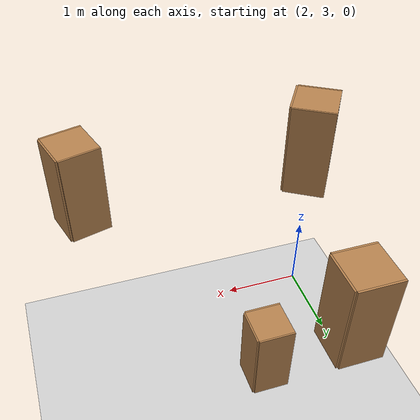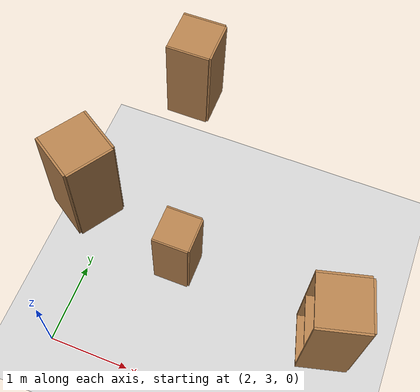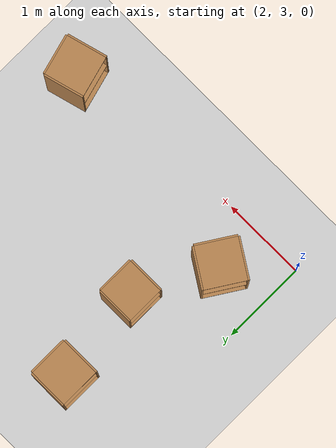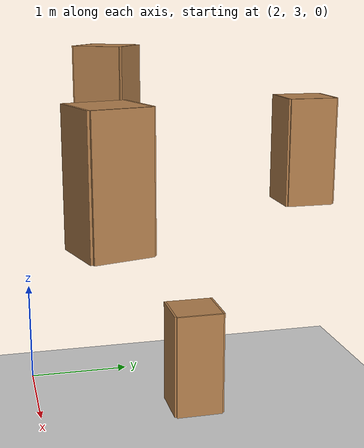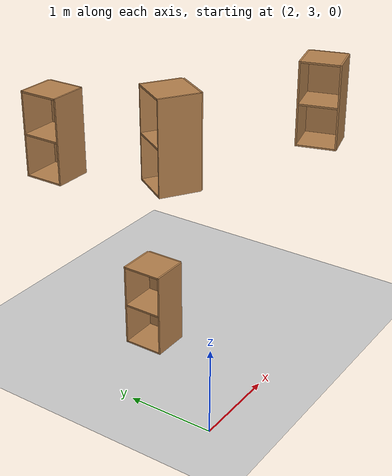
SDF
<sdf version="1.7">
 <world name="default">
  <model name="ground_plane">
   <static>1</static>
   <link name="link">
    <collision name="collision">
     <geometry><plane><normal>0 0 1</normal><size>100 100</size></plane></geometry>
     <surface>
      <contact><collide_bitmask>65535</collide_bitmask></contact>
      <friction><ode><mu>100</mu><mu2>50</mu2></ode></friction>
     </surface>
    </collision>
    <visual name="visual">
     <cast_shadows>0</cast_shadows>
     <geometry><plane><normal>0 0 1</normal><size>100 100</size></plane></geometry>
     <material>
      <script><uri>file://media/materials/scripts/gazebo.material</uri><name>Gazebo/Grey</name></script>
     </material>
    </visual>
   </link>
  </model>
  <model name="cabinet_1">
   <static>1</static>
   <link name="cabinet_bottom_plate">
    <inertial>
     <pose>0 0 -1 0 -0 0</pose>
     <inertia><ixx>2.05</ixx><ixy>0</ixy><ixz>0</ixz><iyy>2.05</iyy><iyz>0</iyz><izz>2.05</izz></inertia>
     <mass>25</mass>
    </inertial>
    <collision name="cabinet_bottom_plate_geom">
     <pose>0 0 0.01 0 -0 0</pose>
     <geometry><box><size>0.45 0.45 0.02</size></box></geometry>
    </collision>
    <visual name="cabinet_bottom_plate_geom_visual">
     <pose>0 0 0.01 0 -0 0</pose>
     <geometry><box><size>0.45 0.45 0.02</size></box></geometry>
     <material>
      <script><uri>file://media/materials/scripts/gazebo.material</uri><name>Gazebo/Wood</name></script>
     </material>
    </visual>
    <collision name="cabinet_bottom_plate_geom_cabinet_back_plate">
     <pose>0.235 0 0.51 0 -0 0</pose>
     <geometry><box><size>0.02 0.45 1.02</size></box></geometry>
    </collision>
    <visual name="cabinet_bottom_plate_geom_cabinet_back_plate_visual">
     <pose>0.235 0 0.51 0 -0 0</pose>
     <geometry><box><size>0.02 0.45 1.02</size></box></geometry>
     <material>
      <script><uri>file://media/materials/scripts/gazebo.material</uri><name>Gazebo/Wood</name></script>
     </material>
    </visual>
    <collision name="cabinet_bottom_plate_geom_cabinet_left_plate">
     <pose>0 0.235 0.51 0 -0 0</pose>
     <geometry><box><size>0.45 0.02 1.02</size></box></geometry>
    </collision>
    <visual name="cabinet_bottom_plate_geom_cabinet_left_plate_visual">
     <pose>0 0.235 0.51 0 -0 0</pose>
     <geometry><box><size>0.45 0.02 1.02</size></box></geometry>
     <material>
      <script><uri>file://media/materials/scripts/gazebo.material</uri><name>Gazebo/Wood</name></script>
     </material>
    </visual>
    <collision name="cabinet_bottom_plate_geom_cabinet_middle_plate">
     <pose>0 0 0.51 0 -0 0</pose>
     <geometry><box><size>0.45 0.45 0.02</size></box></geometry>
    </collision>
    <visual name="cabinet_bottom_plate_geom_cabinet_middle_plate_visual">
     <pose>0 0 0.51 0 -0 0</pose>
     <geometry><box><size>0.45 0.45 0.02</size></box></geometry>
     <material>
      <script><uri>file://media/materials/scripts/gazebo.material</uri><name>Gazebo/Wood</name></script>
     </material>
    </visual>
    <collision name="cabinet_bottom_plate_geom_cabinet_right_plate">
     <pose>0 -0.235 0.51 0 -0 0</pose>
     <geometry><box><size>0.45 0.02 1.02</size></box></geometry>
    </collision>
    <visual name="cabinet_bottom_plate_geom_cabinet_right_plate_visual">
     <pose>0 -0.235 0.51 0 -0 0</pose>
     <geometry><box><size>0.45 0.02 1.02</size></box></geometry>
     <material>
      <script><uri>file://media/materials/scripts/gazebo.material</uri><name>Gazebo/Wood</name></script>
     </material>
    </visual>
    <collision name="cabinet_bottom_plate_geom_cabinet_top_plate">
     <pose>0 0 1.01 0 -0 0</pose>
     <geometry><box><size>0.45 0.45 0.02</size></box></geometry>
    </collision>
    <visual name="cabinet_bottom_plate_geom_cabinet_top_plate_visual">
     <pose>0 0 1.01 0 -0 0</pose>
     <geometry><box><size>0.45 0.45 0.02</size></box></geometry>
     <material>
      <script><uri>file://media/materials/scripts/gazebo.material</uri><name>Gazebo/Wood</name></script>
     </material>
    </visual>
   </link>
   <pose>3.06069 4.48621 0 0 -0 0</pose>
  </model>
  <model name="cabinet_2">
   <static>1</static>
   <link name="cabinet_bottom_plate">
    <inertial>
     <pose>0 0 -1 0 -0 0</pose>
     <inertia><ixx>2.05</ixx><ixy>0</ixy><ixz>0</ixz><iyy>2.05</iyy><iyz>0</iyz><izz>2.05</izz></inertia>
     <mass>25</mass>
    </inertial>
    <collision name="cabinet_bottom_plate_geom">
     <pose>0 0 0.01 0 -0 0</pose>
     <geometry><box><size>0.45 0.45 0.02</size></box></geometry>
    </collision>
    <visual name="cabinet_bottom_plate_geom_visual">
     <pose>0 0 0.01 0 -0 0</pose>
     <geometry><box><size>0.45 0.45 0.02</size></box></geometry>
     <material>
      <script><uri>file://media/materials/scripts/gazebo.material</uri><name>Gazebo/Wood</name></script>
     </material>
    </visual>
    <collision name="cabinet_bottom_plate_geom_cabinet_back_plate">
     <pose>0.235 0 0.51 0 -0 0</pose>
     <geometry><box><size>0.02 0.45 1.02</size></box></geometry>
    </collision>
    <visual name="cabinet_bottom_plate_geom_cabinet_back_plate_visual">
     <pose>0.235 0 0.51 0 -0 0</pose>
     <geometry><box><size>0.02 0.45 1.02</size></box></geometry>
     <material>
      <script><uri>file://media/materials/scripts/gazebo.material</uri><name>Gazebo/Wood</name></script>
     </material>
    </visual>
    <collision name="cabinet_bottom_plate_geom_cabinet_left_plate">
     <pose>0 0.235 0.51 0 -0 0</pose>
     <geometry><box><size>0.45 0.02 1.02</size></box></geometry>
    </collision>
    <visual name="cabinet_bottom_plate_geom_cabinet_left_plate_visual">
     <pose>0 0.235 0.51 0 -0 0</pose>
     <geometry><box><size>0.45 0.02 1.02</size></box></geometry>
     <material>
      <script><uri>file://media/materials/scripts/gazebo.material</uri><name>Gazebo/Wood</name></script>
     </material>
    </visual>
    <collision name="cabinet_bottom_plate_geom_cabinet_middle_plate">
     <pose>0 0 0.51 0 -0 0</pose>
     <geometry><box><size>0.45 0.45 0.02</size></box></geometry>
    </collision>
    <visual name="cabinet_bottom_plate_geom_cabinet_middle_plate_visual">
     <pose>0 0 0.51 0 -0 0</pose>
     <geometry><box><size>0.45 0.45 0.02</size></box></geometry>
     <material>
      <script><uri>file://media/materials/scripts/gazebo.material</uri><name>Gazebo/Wood</name></script>
     </material>
    </visual>
    <collision name="cabinet_bottom_plate_geom_cabinet_right_plate">
     <pose>0 -0.235 0.51 0 -0 0</pose>
     <geometry><box><size>0.45 0.02 1.02</size></box></geometry>
    </collision>
    <visual name="cabinet_bottom_plate_geom_cabinet_right_plate_visual">
     <pose>0 -0.235 0.51 0 -0 0</pose>
     <geometry><box><size>0.45 0.02 1.02</size></box></geometry>
     <material>
      <script><uri>file://media/materials/scripts/gazebo.material</uri><name>Gazebo/Wood</name></script>
     </material>
    </visual>
    <collision name="cabinet_bottom_plate_geom_cabinet_top_plate">
     <pose>0 0 1.01 0 -0 0</pose>
     <geometry><box><size>0.45 0.45 0.02</size></box></geometry>
    </collision>
    <visual name="cabinet_bottom_plate_geom_cabinet_top_plate_visual">
     <pose>0 0 1.01 0 -0 0</pose>
     <geometry><box><size>0.45 0.45 0.02</size></box></geometry>
     <material>
      <script><uri>file://media/materials/scripts/gazebo.material</uri><name>Gazebo/Wood</name></script>
     </material>
    </visual>
   </link>
   <pose>2.45891 3.7857 2.43345 0 0 -0.566768</pose>
  </model>
  <model name="cabinet_3">
   <static>1</static>
   <link name="cabinet_bottom_plate">
    <inertial>
     <pose>0 0 -1 0 -0 0</pose>
     <inertia><ixx>2.05</ixx><ixy>0</ixy><ixz>0</ixz><iyy>2.05</iyy><iyz>0</iyz><izz>2.05</izz></inertia>
     <mass>25</mass>
    </inertial>
    <collision name="cabinet_bottom_plate_geom">
     <pose>0 0 0.01 0 -0 0</pose>
     <geometry><box><size>0.45 0.45 0.02</size></box></geometry>
    </collision>
    <visual name="cabinet_bottom_plate_geom_visual">
     <pose>0 0 0.01 0 -0 0</pose>
     <geometry><box><size>0.45 0.45 0.02</size></box></geometry>
     <material>
      <script><uri>file://media/materials/scripts/gazebo.material</uri><name>Gazebo/Wood</name></script>
     </material>
    </visual>
    <collision name="cabinet_bottom_plate_geom_cabinet_back_plate">
     <pose>0.235 0 0.51 0 -0 0</pose>
     <geometry><box><size>0.02 0.45 1.02</size></box></geometry>
    </collision>
    <visual name="cabinet_bottom_plate_geom_cabinet_back_plate_visual">
     <pose>0.235 0 0.51 0 -0 0</pose>
     <geometry><box><size>0.02 0.45 1.02</size></box></geometry>
     <material>
      <script><uri>file://media/materials/scripts/gazebo.material</uri><name>Gazebo/Wood</name></script>
     </material>
    </visual>
    <collision name="cabinet_bottom_plate_geom_cabinet_left_plate">
     <pose>0 0.235 0.51 0 -0 0</pose>
     <geometry><box><size>0.45 0.02 1.02</size></box></geometry>
    </collision>
    <visual name="cabinet_bottom_plate_geom_cabinet_left_plate_visual">
     <pose>0 0.235 0.51 0 -0 0</pose>
     <geometry><box><size>0.45 0.02 1.02</size></box></geometry>
     <material>
      <script><uri>file://media/materials/scripts/gazebo.material</uri><name>Gazebo/Wood</name></script>
     </material>
    </visual>
    <collision name="cabinet_bottom_plate_geom_cabinet_middle_plate">
     <pose>0 0 0.51 0 -0 0</pose>
     <geometry><box><size>0.45 0.45 0.02</size></box></geometry>
    </collision>
    <visual name="cabinet_bottom_plate_geom_cabinet_middle_plate_visual">
     <pose>0 0 0.51 0 -0 0</pose>
     <geometry><box><size>0.45 0.45 0.02</size></box></geometry>
     <material>
      <script><uri>file://media/materials/scripts/gazebo.material</uri><name>Gazebo/Wood</name></script>
     </material>
    </visual>
    <collision name="cabinet_bottom_plate_geom_cabinet_right_plate">
     <pose>0 -0.235 0.51 0 -0 0</pose>
     <geometry><box><size>0.45 0.02 1.02</size></box></geometry>
    </collision>
    <visual name="cabinet_bottom_plate_geom_cabinet_right_plate_visual">
     <pose>0 -0.235 0.51 0 -0 0</pose>
     <geometry><box><size>0.45 0.02 1.02</size></box></geometry>
     <material>
      <script><uri>file://media/materials/scripts/gazebo.material</uri><name>Gazebo/Wood</name></script>
     </material>
    </visual>
    <collision name="cabinet_bottom_plate_geom_cabinet_top_plate">
     <pose>0 0 1.01 0 -0 0</pose>
     <geometry><box><size>0.45 0.45 0.02</size></box></geometry>
    </collision>
    <visual name="cabinet_bottom_plate_geom_cabinet_top_plate_visual">
     <pose>0 0 1.01 0 -0 0</pose>
     <geometry><box><size>0.45 0.45 0.02</size></box></geometry>
     <material>
      <script><uri>file://media/materials/scripts/gazebo.material</uri><name>Gazebo/Wood</name></script>
     </material>
    </visual>
   </link>
   <pose>2.81411 5.6346 1.95427 0 -0 0</pose>
  </model>
  <model name="cabinet_4">
   <static>1</static>
   <link name="cabinet_bottom_plate">
    <inertial>
     <pose>0 0 -1 0 -0 0</pose>
     <inertia><ixx>2.05</ixx><ixy>0</ixy><ixz>0</ixz><iyy>2.05</iyy><iyz>0</iyz><izz>2.05</izz></inertia>
     <mass>25</mass>
    </inertial>
    <collision name="cabinet_bottom_plate_geom">
     <pose>0 0 0.01 0 -0 0</pose>
     <geometry><box><size>0.45 0.45 0.02</size></box></geometry>
    </collision>
    <visual name="cabinet_bottom_plate_geom_visual">
     <pose>0 0 0.01 0 -0 0</pose>
     <geometry><box><size>0.45 0.45 0.02</size></box></geometry>
     <material>
      <script><uri>file://media/materials/scripts/gazebo.material</uri><name>Gazebo/Wood</name></script>
     </material>
    </visual>
    <collision name="cabinet_bottom_plate_geom_cabinet_back_plate">
     <pose>0.235 0 0.51 0 -0 0</pose>
     <geometry><box><size>0.02 0.45 1.02</size></box></geometry>
    </collision>
    <visual name="cabinet_bottom_plate_geom_cabinet_back_plate_visual">
     <pose>0.235 0 0.51 0 -0 0</pose>
     <geometry><box><size>0.02 0.45 1.02</size></box></geometry>
     <material>
      <script><uri>file://media/materials/scripts/gazebo.material</uri><name>Gazebo/Wood</name></script>
     </material>
    </visual>
    <collision name="cabinet_bottom_plate_geom_cabinet_left_plate">
     <pose>0 0.235 0.51 0 -0 0</pose>
     <geometry><box><size>0.45 0.02 1.02</size></box></geometry>
    </collision>
    <visual name="cabinet_bottom_plate_geom_cabinet_left_plate_visual">
     <pose>0 0.235 0.51 0 -0 0</pose>
     <geometry><box><size>0.45 0.02 1.02</size></box></geometry>
     <material>
      <script><uri>file://media/materials/scripts/gazebo.material</uri><name>Gazebo/Wood</name></script>
     </material>
    </visual>
    <collision name="cabinet_bottom_plate_geom_cabinet_middle_plate">
     <pose>0 0 0.51 0 -0 0</pose>
     <geometry><box><size>0.45 0.45 0.02</size></box></geometry>
    </collision>
    <visual name="cabinet_bottom_plate_geom_cabinet_middle_plate_visual">
     <pose>0 0 0.51 0 -0 0</pose>
     <geometry><box><size>0.45 0.45 0.02</size></box></geometry>
     <material>
      <script><uri>file://media/materials/scripts/gazebo.material</uri><name>Gazebo/Wood</name></script>
     </material>
    </visual>
    <collision name="cabinet_bottom_plate_geom_cabinet_right_plate">
     <pose>0 -0.235 0.51 0 -0 0</pose>
     <geometry><box><size>0.45 0.02 1.02</size></box></geometry>
    </collision>
    <visual name="cabinet_bottom_plate_geom_cabinet_right_plate_visual">
     <pose>0 -0.235 0.51 0 -0 0</pose>
     <geometry><box><size>0.45 0.02 1.02</size></box></geometry>
     <material>
      <script><uri>file://media/materials/scripts/gazebo.material</uri><name>Gazebo/Wood</name></script>
     </material>
    </visual>
    <collision name="cabinet_bottom_plate_geom_cabinet_top_plate">
     <pose>0 0 1.01 0 -0 0</pose>
     <geometry><box><size>0.45 0.45 0.02</size></box></geometry>
    </collision>
    <visual name="cabinet_bottom_plate_geom_cabinet_top_plate_visual">
     <pose>0 0 1.01 0 -0 0</pose>
     <geometry><box><size>0.45 0.45 0.02</size></box></geometry>
     <material>
      <script><uri>file://media/materials/scripts/gazebo.material</uri><name>Gazebo/Wood</name></script>
     </material>
    </visual>
   </link>
   <pose>4.90719 3.3905 2.16326 0 -0 0.264104</pose>
  </model>
 </world>
</sdf>
